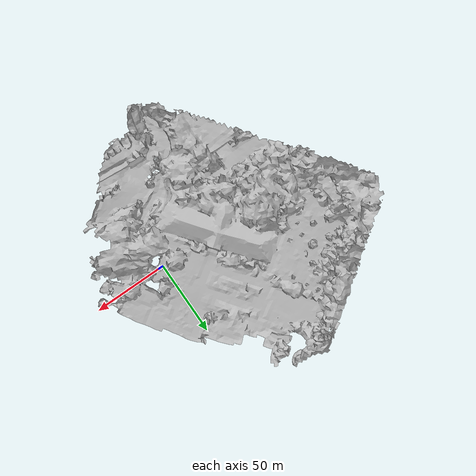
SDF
<sdf version="1.7">
 <world name="default">
  <light name="sun" type="directional">
   <pose>0 0 10 0 -0 0</pose>
   <diffuse>0.8 0.8 0.8 1</diffuse>
   <specular>0.2 0.2 0.2 1</specular>
   <attenuation>
    <range>1000</range>
    <constant>0.9</constant>
    <linear>0.01</linear>
    <quadratic>0.001</quadratic>
   </attenuation>
   <direction>-0.5 0.1 -0.9</direction>
   <spot><inner_angle>0</inner_angle><outer_angle>0</outer_angle><falloff>0</falloff></spot>
  </light>
  <gravity>0 0 -9.8</gravity>
  <magnetic_field>6e-06 2.3e-05 -4.2e-05</magnetic_field>
  <atmosphere type="adiabatic"/>
  <physics type="ode">
   <max_step_size>0.001</max_step_size>
   <real_time_factor>1</real_time_factor>
   <real_time_update_rate>1000</real_time_update_rate>
  </physics>
  <scene><ambient>0.4 0.4 0.4 1</ambient><background>0.7 0.7 0.7 1</background><shadows>1</shadows></scene>
  <audio><device>default</device></audio>
  <spherical_coordinates>
   <surface_model>EARTH_WGS84</surface_model>
   <latitude_deg>0</latitude_deg>
   <longitude_deg>0</longitude_deg>
   <elevation>0</elevation>
   <heading_deg>0</heading_deg>
  </spherical_coordinates>
  <model name="12_block_1">
   <static>1</static>
   <pose>0 0 -1495 0 -0 0</pose>
   <link name="12_block_link">
    <gravity>0</gravity>
    <inertial>
     <mass>1</mass>
     <inertia><ixx>0</ixx><ixy>0</ixy><ixz>0</ixz><iyy>0</iyy><iyz>0</iyz><izz>0</izz></inertia>
    </inertial>
    <visual name="12_block_visual">
     <geometry><mesh><uri>model://UPB_12_BLOCK/meshes/B12.obj</uri></mesh></geometry>
    </visual>
    <collision name="12_block_collisions">
     <max_contacts>1000</max_contacts>
     <geometry><mesh><uri>model://UPB_12_BLOCK/meshes/b12_collision.obj</uri></mesh></geometry>
    </collision>
    <surface><contact><ode><min_depth>0.001</min_depth><max_vel>0</max_vel></ode></contact></surface>
   </link>
  </model>
 </world>
</sdf>
